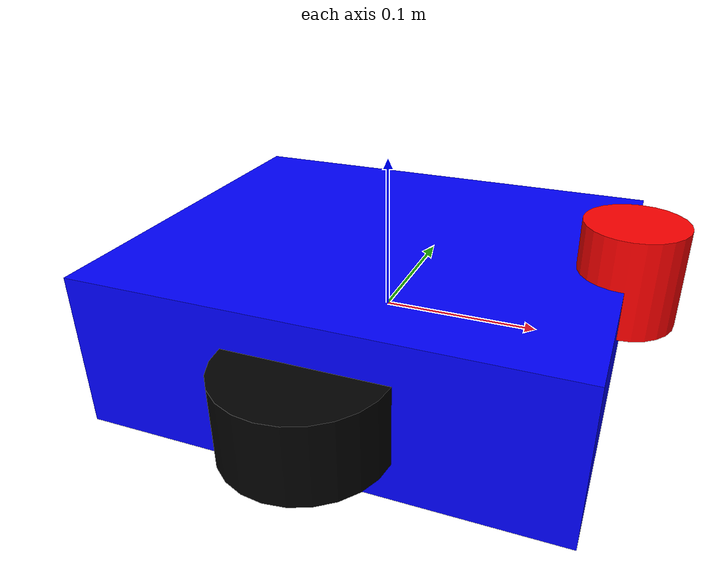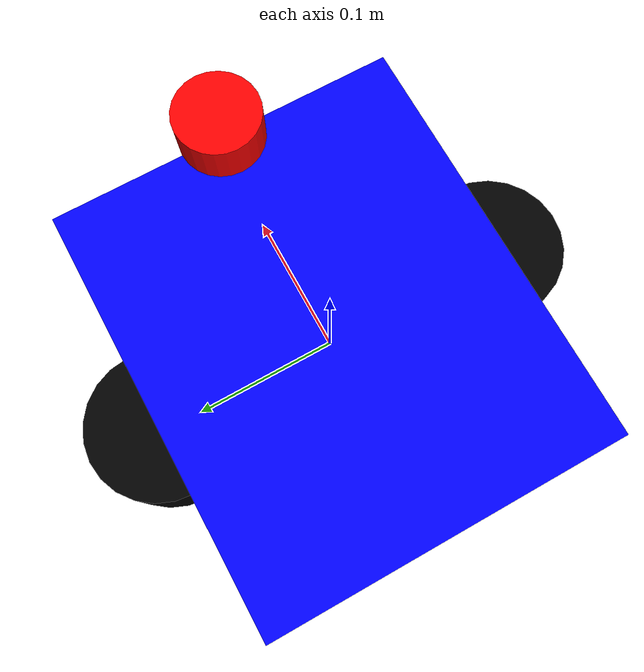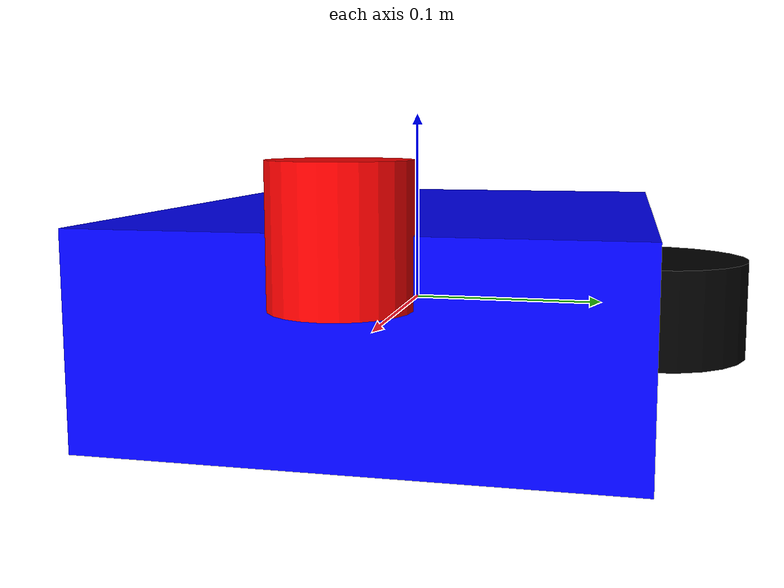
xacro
<?xml version="1.0"?>
<robot xmlns:xacro="http://www.ros.org/wiki/xacro" name="diff_bot">

  <!-- Xacro properties -->
  <xacro:property name="base_length" value="0.3"/>
  <xacro:property name="base_width" value="0.25"/>
  <xacro:property name="base_height" value="0.1"/>
  <xacro:property name="wheel_radius" value="0.05"/>
  <xacro:property name="wheel_width" value="0.05"/>
  <xacro:property name="wheel_separation" value="0.25"/>
  <xacro:property name="lidar_radius" value="0.03"/>
  <xacro:property name="lidar_height" value="0.06"/>

  <!-- Base Link -->
  <link name="base_link">
    <visual>
      <geometry>
        <box size="${base_length} ${base_width} ${base_height}"/>
      </geometry>
      <material name="blue">
        <color rgba="0.0 0.0 1.0 1.0"/>
      </material>
      <origin xyz="0 0 0" rpy="0 0 0"/>
    </visual>
    <collision>
      <geometry>
        <box size="${base_length} ${base_width} ${base_height}"/>
      </geometry>
      <origin xyz="0 0 0" rpy="0 0 0"/>
    </collision>
    <inertial>
      <mass value="5.0"/>
      <inertia ixx="0.1" ixy="0.0" ixz="0.0" iyy="0.1" iyz="0.0" izz="0.1"/>
      <origin xyz="0 0 0" rpy="0 0 0"/>
    </inertial>
  </link>

  <!-- Left Wheel Joint (continuous) -->
  <joint name="left_wheel_joint" type="continuous">
    <parent link="base_link"/>
    <child link="left_wheel"/>
    <axis xyz="0 1 0"/>
    <origin xyz="0 ${wheel_separation/2} -${base_height/2 - wheel_radius}" rpy="0 0 0"/>
  </joint>

  <!-- Left Wheel Link -->
  <link name="left_wheel">
    <visual>
      <geometry>
        <cylinder radius="${wheel_radius}" length="${wheel_width}"/>
      </geometry>
      <material name="black">
        <color rgba="0.0 0.0 0.0 1.0"/>
      </material>
      <origin xyz="0 0 0" rpy="0 0 0"/>
    </visual>
    <collision>
      <geometry>
        <cylinder radius="${wheel_radius}" length="${wheel_width}"/>
      </geometry>
      <origin xyz="0 0 0" rpy="0 0 0"/>
    </collision>
    <inertial>
      <mass value="0.5"/>
      <inertia ixx="0.01" ixy="0.0" ixz="0.0" iyy="0.01" iyz="0.0" izz="0.01"/>
      <origin xyz="0 0 0" rpy="0 0 0"/>
    </inertial>
  </link>

  <!-- Right Wheel Joint (continuous) -->
  <joint name="right_wheel_joint" type="continuous">
    <parent link="base_link"/>
    <child link="right_wheel"/>
    <axis xyz="0 1 0"/>
    <origin xyz="0 -${wheel_separation/2} -${base_height/2 - wheel_radius}" rpy="0 0 0"/>
  </joint>

  <!-- Right Wheel Link -->
  <link name="right_wheel">
    <visual>
      <geometry>
        <cylinder radius="${wheel_radius}" length="${wheel_width}"/>
      </geometry>
      <material name="black">
        <color rgba="0.0 0.0 0.0 1.0"/>
      </material>
      <origin xyz="0 0 0" rpy="0 0 0"/>
    </visual>
    <collision>
      <geometry>
        <cylinder radius="${wheel_radius}" length="${wheel_width}"/>
      </geometry>
      <origin xyz="0 0 0" rpy="0 0 0"/>
    </collision>
    <inertial>
      <mass value="0.5"/>
      <inertia ixx="0.01" ixy="0.0" ixz="0.0" iyy="0.01" iyz="0.0" izz="0.01"/>
      <origin xyz="0 0 0" rpy="0 0 0"/>
    </inertial>
  </link>

  <!-- LiDAR Sensor Frame Joint (fixed) -->
  <joint name="lidar_joint" type="fixed">
    <parent link="base_link"/>
    <child link="laser_frame"/>
    <origin xyz="${base_length/2} 0 ${base_height/2}" rpy="0 0 0"/>
  </joint>

  <!-- LiDAR Sensor Frame -->
  <link name="laser_frame">
    <visual>
      <geometry>
        <cylinder radius="${lidar_radius}" length="${lidar_height}"/>
      </geometry>
      <material name="red">
        <color rgba="1.0 0.0 0.0 1.0"/>
      </material>
      <origin xyz="0 0 0" rpy="0 0 0"/>
    </visual>
    <collision>
      <geometry>
        <cylinder radius="${lidar_radius}" length="${lidar_height}"/>
      </geometry>
      <origin xyz="0 0 0" rpy="0 0 0"/>
    </collision>
    <inertial>
      <mass value="0.2"/>
      <inertia ixx="0.001" ixy="0.0" ixz="0.0" iyy="0.001" iyz="0.0" izz="0.001"/>
      <origin xyz="0 0 0" rpy="0 0 0"/>
    </inertial>
  </link>

</robot>
